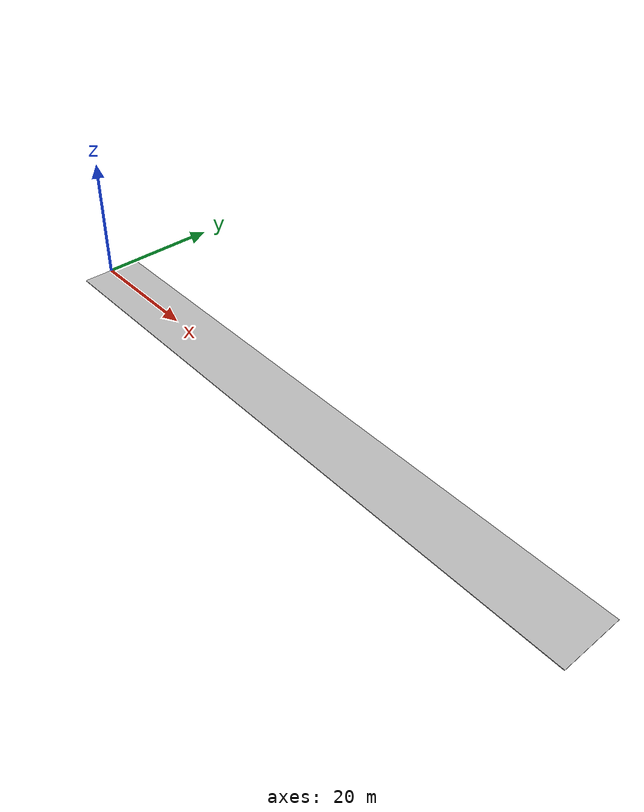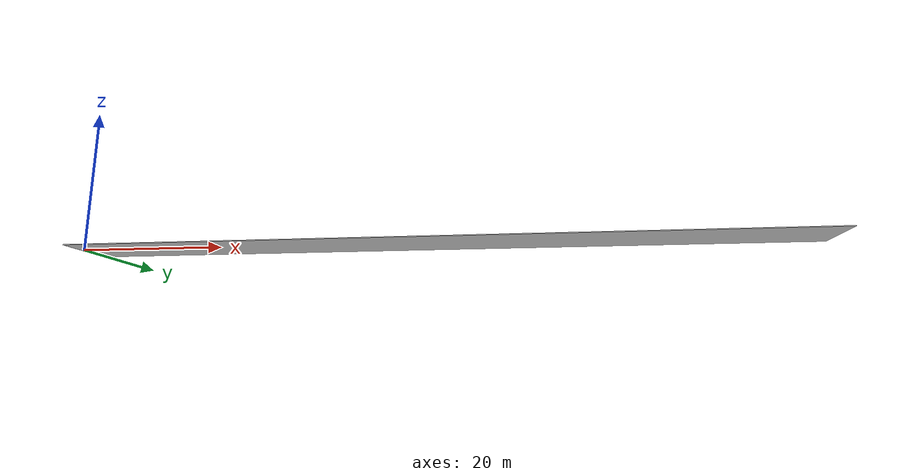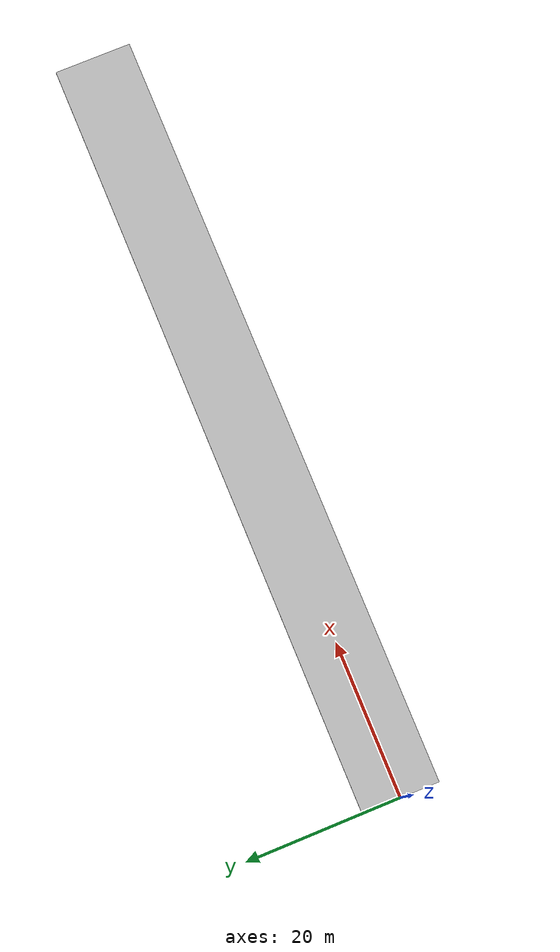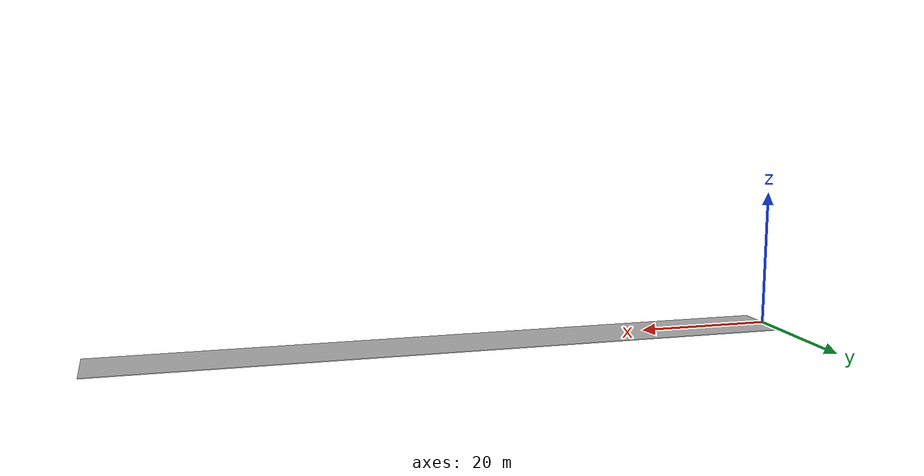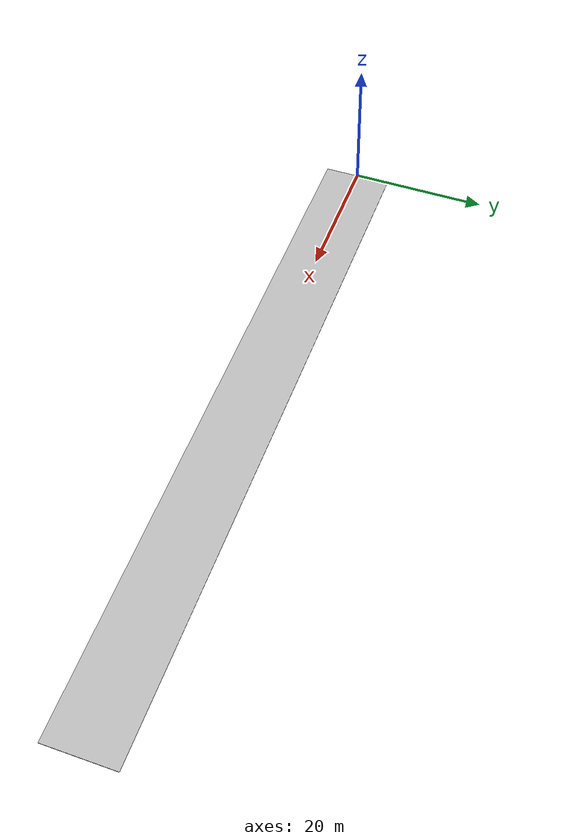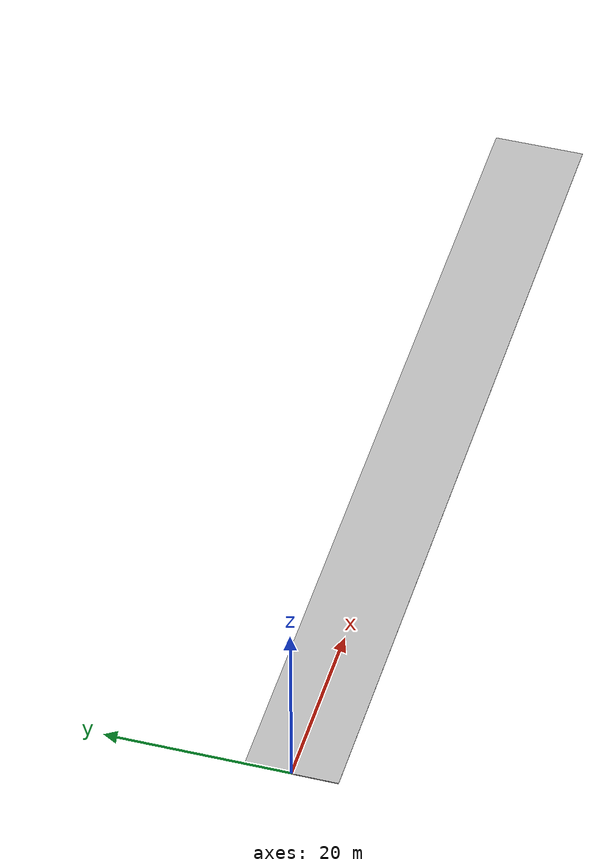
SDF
<?xml version='1.0'?>
<sdf version='1.11'>
  <model name='straight_road_100m'>
    <pose>0 0 0 0 0 0</pose>
    <link name='road'>
      <pose>0 0 0 0 0 0</pose>
      <visual name='road_visual'>
        <pose>0 0 0 0 0 0</pose>
        <geometry>
          <mesh>
            <uri>package://ece5532_gazebo/models/straight_road_100m/meshes/two_way_two_lane.obj</uri>
          </mesh>
        </geometry>
      </visual>
      <collision name='road_collision'>
        <pose>0 0 0 0 0 0</pose>
        <geometry>
          <mesh>
            <uri>package://ece5532_gazebo/models/straight_road_100m/meshes/two_way_two_lane.obj</uri>
          </mesh>
        </geometry>
      </collision>
    </link>
    <static>1</static>
  </model>
</sdf>
